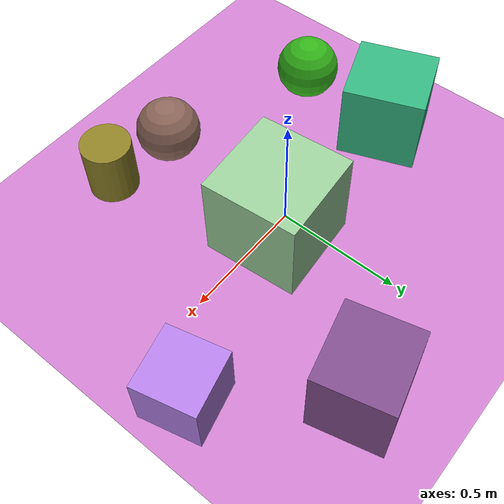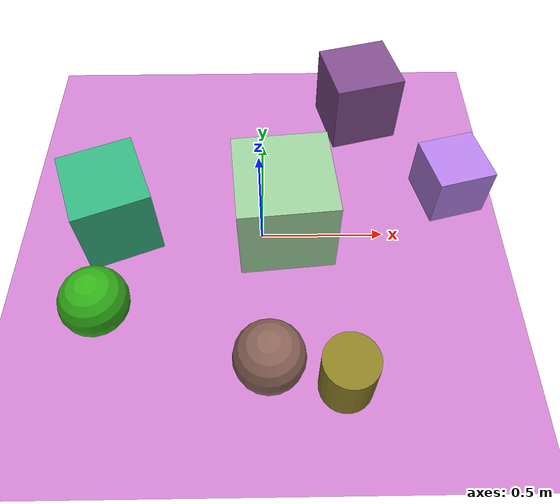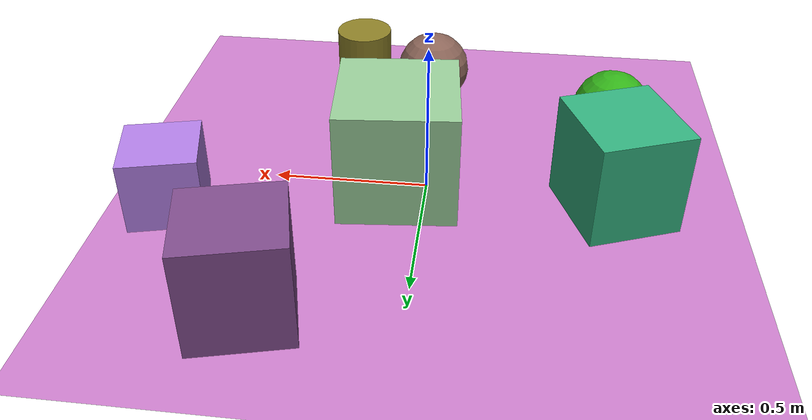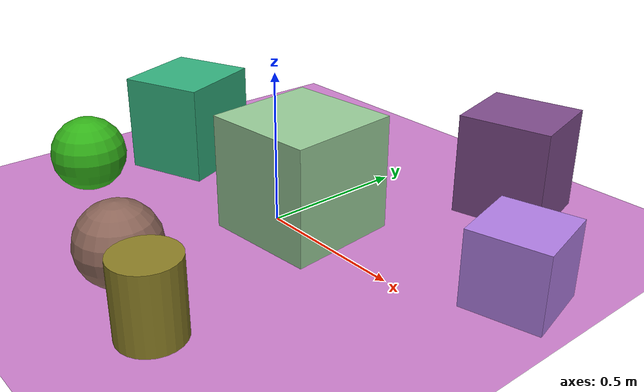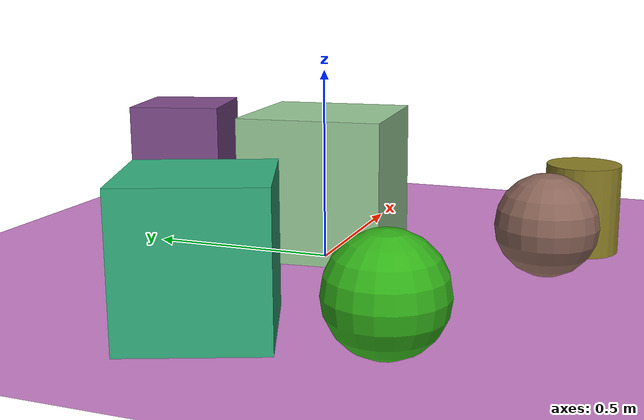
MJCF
<mujoco>
   <asset>
<texture type="skybox" builtin="gradient" rgb1="1.0 0.7 0.8" rgb2="0.8 0.8 0.1" width="500" height="500"/>
<texture name="flat_0" builtin="flat" rgb1="0.2 0.7 0.1" rgb2="0.2 0.7 0.1"  width="500" height="500"/>
<texture name="flat_1" builtin="flat" rgb1="0.2 0.7 0.5" rgb2="0.2 0.7 0.5"  width="500" height="500"/>
<texture name="checker_2" builtin="checker" rgb1="0.4 0.5 0.7" rgb2="0.6 0.1 0.4" width="500" height="500"/>
<texture name="checker_3" builtin="checker" rgb1="0.4 0.7 0.4" rgb2="0.8 0.9 0.8" width="500" height="500"/>
<texture name="checker_4" builtin="checker" rgb1="0.2 0.8 0.0" rgb2="0.9 0.2 0.3" width="500" height="500"/>
<texture name="checker_5" builtin="checker" rgb1="0.9 0.6 1.0" rgb2="0.5 0.4 0.8" width="500" height="500"/>
<texture name="gradient_6" builtin="gradient" rgb1="0.6 0.3 0.2" rgb2="0.5 0.5 0.5" width="500" height="500"/><material name="flat_0_mat" reflectance="0.7173345691344044" texture="flat_0" texuniform="true"/>
<material name="flat_1_mat" reflectance="0.5042572289393668" texture="flat_1" texuniform="true"/>
<material name="checker_2_mat" reflectance="0.042627573692905596" texrepeat="4 4" texture="checker_2" texuniform="false" />
<material name="checker_3_mat" reflectance="0.6129571302758662" texrepeat="2 2" texture="checker_3" texuniform="false" />
<material name="checker_4_mat" reflectance="0.2583969486678883" texrepeat="5 5" texture="checker_4" texuniform="false" />
<material name="checker_5_mat" reflectance="0.805956119700035" texrepeat="7 7" texture="checker_5" texuniform="false" />
<material name="gradient_6_mat" reflectance="0.40042148823320656" texture="gradient_6" texuniform="true"/>
   </asset>

   <worldbody>
     <geom type="plane" size="1 1 0.1" rgba="0.8 0.5 0.8 1" />
<light pos="-0.48326439922064335 0.8111190493483247 2" dir="0 0 -1" cutoff="90" diffuse="1 1 1" specular="1 1 1"/>
<light pos="-0.5733697153951611 -0.06695645849948773 2" dir="0 0 -1" cutoff="90" diffuse="1 1 1" specular="1 1 1"/>
<geom type="sphere" pos="-0.61 -0.36 0.13" size="0.13 0.13 0.13" material="flat_0_mat" euler="0 0 43" />
<geom type="box" pos="-0.6 0.05 0.17" size="0.15 0.16 0.17" material="flat_1_mat" euler="0 0 21" />
<geom type="box" pos="0.44 0.66 0.17" size="0.15 0.14 0.17" material="checker_2_mat" euler="0 0 14" />
<geom type="box" pos="0.09 0.03 0.19" size="0.19 0.19 0.19" material="checker_3_mat" euler="0 0 5" />
<geom type="cylinder" pos="0.3 -0.64 0.12" size="0.1 0.12 0.12" material="checker_4_mat" euler="0 0 7" />
<geom type="box" pos="0.8 0.21 0.12" size="0.12 0.12 0.12" material="checker_5_mat" euler="0 0 14" />
<geom type="sphere" pos="0.03 -0.58 0.13" size="0.13 0.13 0.13" material="gradient_6_mat" euler="0 0 34" /><camera euler="60 0 180" fovy="60" name="camera1" pos="-0.2 -1.5 1"></camera>   </worldbody>
   <visual>
      <headlight diffuse="0.7 0.7 0.7"/>
   </visual>
</mujoco>
